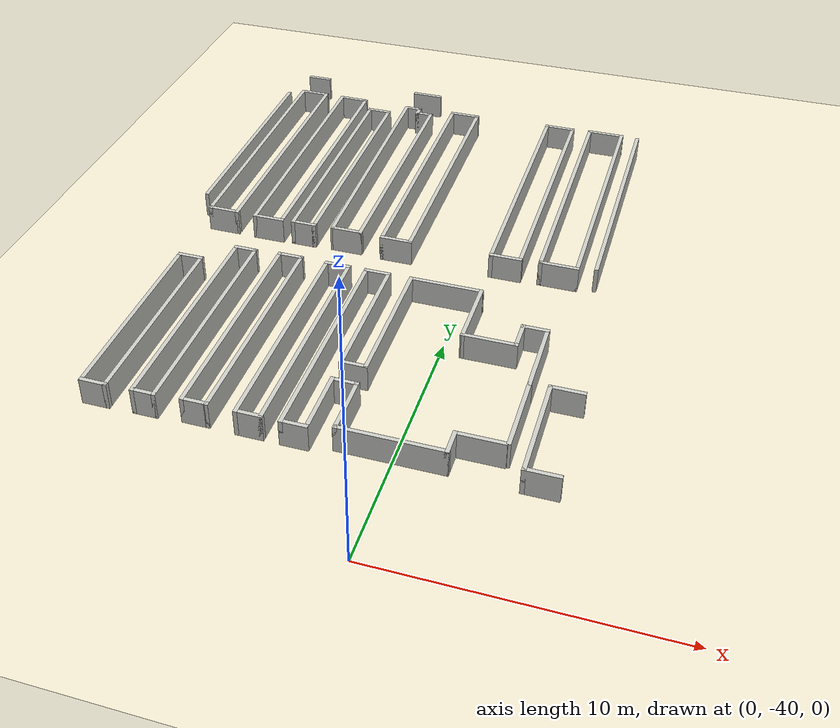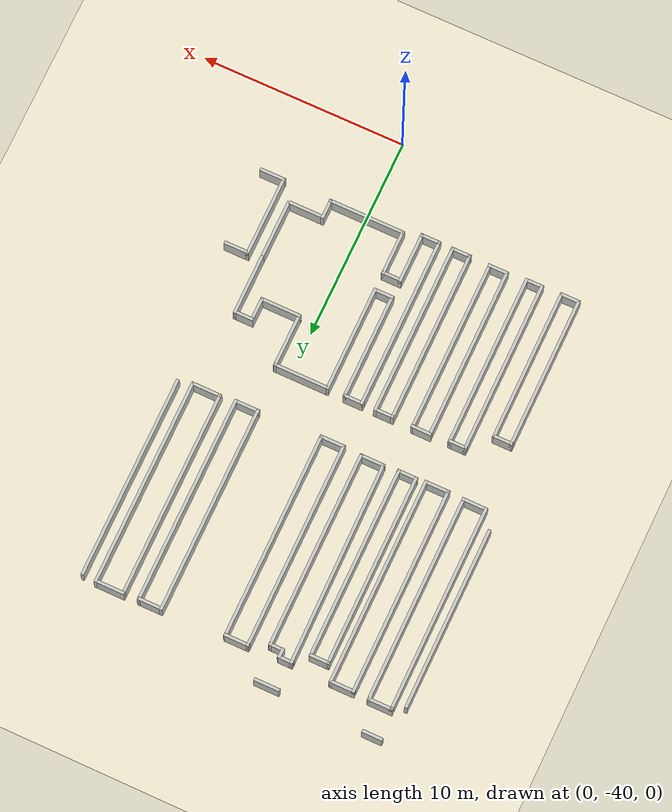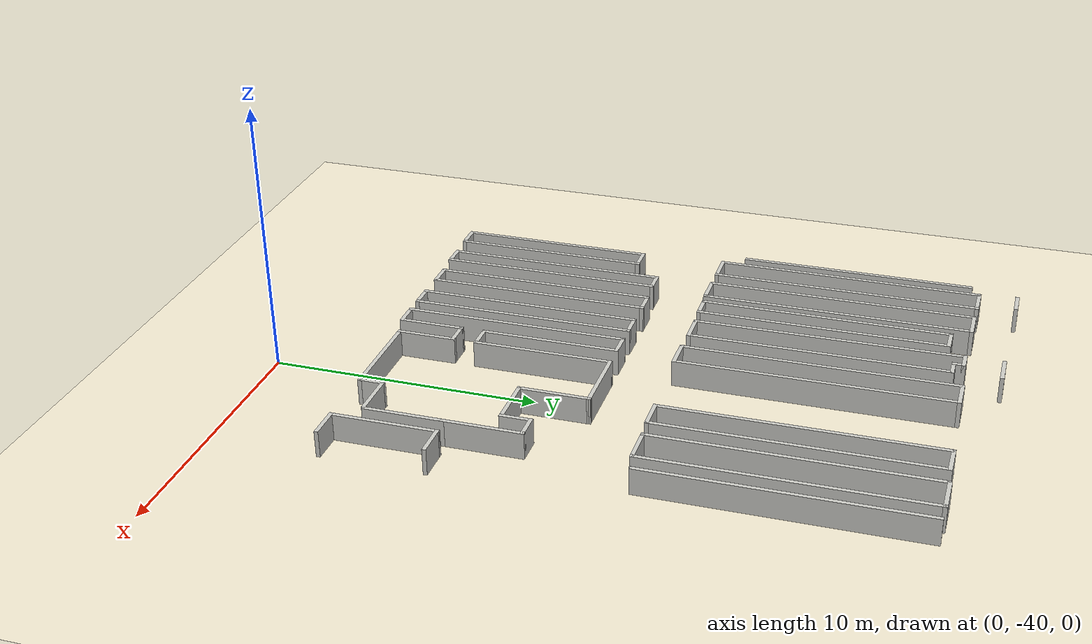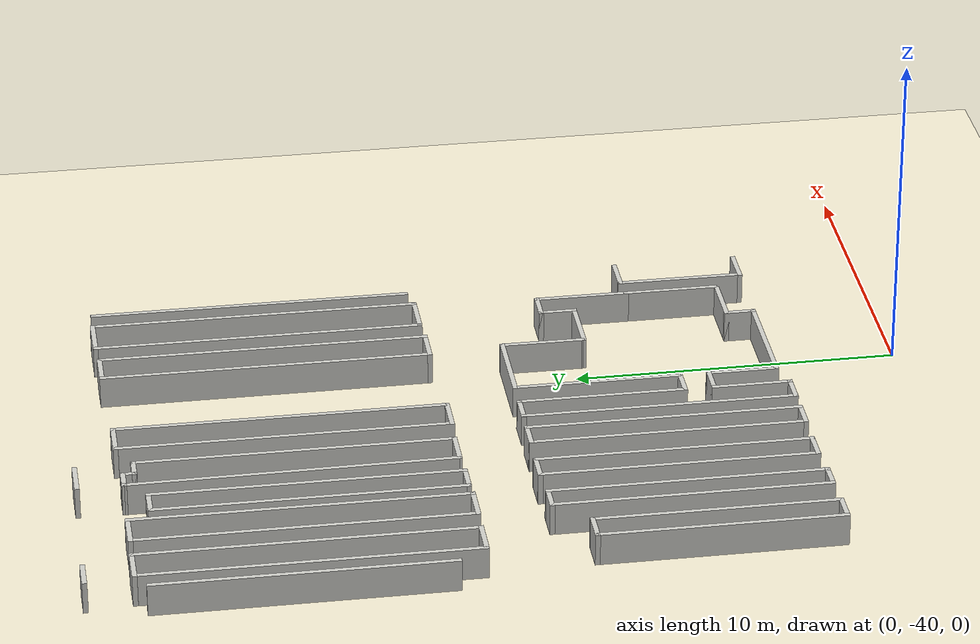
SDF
<sdf version="1.7">
 <world name="default">
  <model name="ground_plane">
   <static>1</static>
   <link name="link">
    <collision name="collision">
     <geometry><plane><normal>0 0 1</normal><size>100 100</size></plane></geometry>
     <surface><friction><ode><mu>100</mu><mu2>50</mu2></ode></friction></surface>
    </collision>
    <visual name="visual">
     <cast_shadows>0</cast_shadows>
     <geometry><plane><normal>0 0 1</normal><size>100 100</size></plane></geometry>
     <material>
      <ambient>0.85 0.82 0.72 1</ambient>
      <diffuse>0.95 0.92 0.82 1</diffuse>
      <specular>0.05 0.05 0.05 1</specular>
     </material>
    </visual>
   </link>
  </model>
  <model name="warehouse">
   <pose>0.004046 2.00696 0 0 -0 0</pose>
   <link name="Wall_357">
    <collision name="Wall_357_Collision">
     <geometry><box><size>7.5 0.15 1</size></box></geometry>
     <pose>0 0 0.5 0 -0 0</pose>
    </collision>
    <visual name="Wall_357_Visual">
     <pose>0 0 0.5 0 -0 0</pose>
     <geometry><box><size>7.5 0.15 1</size></box></geometry>
     <material>
      <script><uri>file://media/materials/scripts/gazebo.material</uri><name>Gazebo/CeilingTiled</name></script>
      <ambient>1 1 1 1</ambient>
     </material>
     <meta><layer>0</layer></meta>
    </visual>
    <pose>-10.458 -34.5645 0 0 -0 -1.5708</pose>
   </link>
   <link name="Wall_358">
    <collision name="Wall_358_Collision">
     <geometry><box><size>1 0.15 1</size></box></geometry>
     <pose>0 0 0.5 0 -0 0</pose>
    </collision>
    <visual name="Wall_358_Visual">
     <pose>0 0 0.5 0 -0 0</pose>
     <geometry><box><size>1 0.15 1</size></box></geometry>
     <material>
      <script><uri>file://media/materials/scripts/gazebo.material</uri><name>Gazebo/CeilingTiled</name></script>
      <ambient>1 1 1 1</ambient>
     </material>
     <meta><layer>0</layer></meta>
    </visual>
    <pose>-10.033 -38.2395 0 0 -0 0</pose>
   </link>
   <link name="Wall_359">
    <collision name="Wall_359_Collision">
     <geometry><box><size>7.5 0.15 1</size></box></geometry>
     <pose>0 0 0.5 0 -0 0</pose>
    </collision>
    <visual name="Wall_359_Visual">
     <pose>0 0 0.5 0 -0 0</pose>
     <geometry><box><size>7.5 0.15 1</size></box></geometry>
     <material>
      <script><uri>file://media/materials/scripts/gazebo.material</uri><name>Gazebo/CeilingTiled</name></script>
      <ambient>1 1 1 1</ambient>
     </material>
     <meta><layer>0</layer></meta>
    </visual>
    <pose>-9.60804 -34.5645 0 0 -0 1.5708</pose>
   </link>
   <link name="Wall_360">
    <collision name="Wall_360_Collision">
     <geometry><box><size>1 0.15 1</size></box></geometry>
     <pose>0 0 0.5 0 -0 0</pose>
    </collision>
    <visual name="Wall_360_Visual">
     <pose>0 0 0.5 0 -0 0</pose>
     <geometry><box><size>1 0.15 1</size></box></geometry>
     <material>
      <script><uri>file://media/materials/scripts/gazebo.material</uri><name>Gazebo/CeilingTiled</name></script>
      <ambient>1 1 1 1</ambient>
     </material>
     <meta><layer>0</layer></meta>
    </visual>
    <pose>-10.033 -30.8895 0 0 -0 3.14159</pose>
   </link>
   <link name="Wall_362">
    <collision name="Wall_362_Collision">
     <geometry><box><size>8.5 0.15 1</size></box></geometry>
     <pose>0 0 0.5 0 -0 0</pose>
    </collision>
    <visual name="Wall_362_Visual">
     <pose>0 0 0.5 0 -0 0</pose>
     <geometry><box><size>8.5 0.15 1</size></box></geometry>
     <material>
      <script><uri>file://media/materials/scripts/gazebo.material</uri><name>Gazebo/CeilingTiled</name></script>
      <ambient>1 1 1 1</ambient>
     </material>
     <meta><layer>0</layer></meta>
    </visual>
    <pose>-8.65804 -34.0245 0 0 -0 -1.5708</pose>
   </link>
   <link name="Wall_363">
    <collision name="Wall_363_Collision">
     <geometry><box><size>0.913 0.15 1</size></box></geometry>
     <pose>0 0 0.5 0 -0 0</pose>
    </collision>
    <visual name="Wall_363_Visual">
     <pose>0 0 0.5 0 -0 0</pose>
     <geometry><box><size>0.913 0.15 1</size></box></geometry>
     <material>
      <script><uri>file://media/materials/scripts/gazebo.material</uri><name>Gazebo/CeilingTiled</name></script>
      <ambient>1 1 1 1</ambient>
     </material>
     <meta><layer>0</layer></meta>
    </visual>
    <pose>-8.27654 -38.1995 0 0 -0 0</pose>
   </link>
   <link name="Wall_364">
    <collision name="Wall_364_Collision">
     <geometry><box><size>8.5 0.15 1</size></box></geometry>
     <pose>0 0 0.5 0 -0 0</pose>
    </collision>
    <visual name="Wall_364_Visual">
     <pose>0 0 0.5 0 -0 0</pose>
     <geometry><box><size>8.5 0.15 1</size></box></geometry>
     <material>
      <script><uri>file://media/materials/scripts/gazebo.material</uri><name>Gazebo/CeilingTiled</name></script>
      <ambient>1 1 1 1</ambient>
     </material>
     <meta><layer>0</layer></meta>
    </visual>
    <pose>-7.89504 -34.0245 0 0 -0 1.5708</pose>
   </link>
   <link name="Wall_365">
    <collision name="Wall_365_Collision">
     <geometry><box><size>0.913 0.15 1</size></box></geometry>
     <pose>0 0 0.5 0 -0 0</pose>
    </collision>
    <visual name="Wall_365_Visual">
     <pose>0 0 0.5 0 -0 0</pose>
     <geometry><box><size>0.913 0.15 1</size></box></geometry>
     <material>
      <script><uri>file://media/materials/scripts/gazebo.material</uri><name>Gazebo/CeilingTiled</name></script>
      <ambient>1 1 1 1</ambient>
     </material>
     <meta><layer>0</layer></meta>
    </visual>
    <pose>-8.27654 -29.8495 0 0 -0 3.14159</pose>
   </link>
   <link name="Wall_367">
    <collision name="Wall_367_Collision">
     <geometry><box><size>8.5 0.15 1</size></box></geometry>
     <pose>0 0 0.5 0 -0 0</pose>
    </collision>
    <visual name="Wall_367_Visual">
     <pose>0 0 0.5 0 -0 0</pose>
     <geometry><box><size>8.5 0.15 1</size></box></geometry>
     <material>
      <script><uri>file://media/materials/scripts/gazebo.material</uri><name>Gazebo/CeilingTiled</name></script>
      <ambient>1 1 1 1</ambient>
     </material>
     <meta><layer>0</layer></meta>
    </visual>
    <pose>-6.95104 -33.9425 0 0 -0 -1.5708</pose>
   </link>
   <link name="Wall_368">
    <collision name="Wall_368_Collision">
     <geometry><box><size>1 0.15 1</size></box></geometry>
     <pose>0 0 0.5 0 -0 0</pose>
    </collision>
    <visual name="Wall_368_Visual">
     <pose>0 0 0.5 0 -0 0</pose>
     <geometry><box><size>1 0.15 1</size></box></geometry>
     <material>
      <script><uri>file://media/materials/scripts/gazebo.material</uri><name>Gazebo/CeilingTiled</name></script>
      <ambient>1 1 1 1</ambient>
     </material>
     <meta><layer>0</layer></meta>
    </visual>
    <pose>-6.52604 -38.1175 0 0 -0 0</pose>
   </link>
   <link name="Wall_369">
    <collision name="Wall_369_Collision">
     <geometry><box><size>8.5 0.15 1</size></box></geometry>
     <pose>0 0 0.5 0 -0 0</pose>
    </collision>
    <visual name="Wall_369_Visual">
     <pose>0 0 0.5 0 -0 0</pose>
     <geometry><box><size>8.5 0.15 1</size></box></geometry>
     <material>
      <script><uri>file://media/materials/scripts/gazebo.material</uri><name>Gazebo/CeilingTiled</name></script>
      <ambient>1 1 1 1</ambient>
     </material>
     <meta><layer>0</layer></meta>
    </visual>
    <pose>-6.10104 -33.9425 0 0 -0 1.5708</pose>
   </link>
   <link name="Wall_370">
    <collision name="Wall_370_Collision">
     <geometry><box><size>1 0.15 1</size></box></geometry>
     <pose>0 0 0.5 0 -0 0</pose>
    </collision>
    <visual name="Wall_370_Visual">
     <pose>0 0 0.5 0 -0 0</pose>
     <geometry><box><size>1 0.15 1</size></box></geometry>
     <material>
      <script><uri>file://media/materials/scripts/gazebo.material</uri><name>Gazebo/CeilingTiled</name></script>
      <ambient>1 1 1 1</ambient>
     </material>
     <meta><layer>0</layer></meta>
    </visual>
    <pose>-6.52604 -29.7675 0 0 -0 3.14159</pose>
   </link>
   <link name="Wall_373">
    <collision name="Wall_373_Collision">
     <geometry><box><size>8.5 0.15 1</size></box></geometry>
     <pose>0 0 0.5 0 -0 0</pose>
    </collision>
    <visual name="Wall_373_Visual">
     <pose>0 0 0.5 0 -0 0</pose>
     <geometry><box><size>8.5 0.15 1</size></box></geometry>
     <material>
      <script><uri>file://media/materials/scripts/gazebo.material</uri><name>Gazebo/CeilingTiled</name></script>
      <ambient>1 1 1 1</ambient>
     </material>
     <meta><layer>0</layer></meta>
    </visual>
    <pose>-4.24804 -33.9665 0 0 -0 -1.5708</pose>
   </link>
   <link name="Wall_374">
    <collision name="Wall_374_Collision">
     <geometry><box><size>1 0.15 1</size></box></geometry>
     <pose>0 0 0.5 0 -0 0</pose>
    </collision>
    <visual name="Wall_374_Visual">
     <pose>0 0 0.5 0 -0 0</pose>
     <geometry><box><size>1 0.15 1</size></box></geometry>
     <material>
      <script><uri>file://media/materials/scripts/gazebo.material</uri><name>Gazebo/CeilingTiled</name></script>
      <ambient>1 1 1 1</ambient>
     </material>
     <meta><layer>0</layer></meta>
    </visual>
    <pose>-4.67304 -38.1415 0 0 -0 3.14159</pose>
   </link>
   <link name="Wall_375">
    <collision name="Wall_375_Collision">
     <geometry><box><size>8.5 0.15 1</size></box></geometry>
     <pose>0 0 0.5 0 -0 0</pose>
    </collision>
    <visual name="Wall_375_Visual">
     <pose>0 0 0.5 0 -0 0</pose>
     <geometry><box><size>8.5 0.15 1</size></box></geometry>
     <material>
      <script><uri>file://media/materials/scripts/gazebo.material</uri><name>Gazebo/CeilingTiled</name></script>
      <ambient>1 1 1 1</ambient>
     </material>
     <meta><layer>0</layer></meta>
    </visual>
    <pose>-5.09804 -33.9665 0 0 -0 1.5708</pose>
   </link>
   <link name="Wall_377">
    <collision name="Wall_377_Collision">
     <geometry><box><size>1 0.15 1</size></box></geometry>
     <pose>0 0 0.5 0 -0 0</pose>
    </collision>
    <visual name="Wall_377_Visual">
     <pose>0 0 0.5 0 -0 0</pose>
     <geometry><box><size>1 0.15 1</size></box></geometry>
     <material>
      <script><uri>file://media/materials/scripts/gazebo.material</uri><name>Gazebo/CeilingTiled</name></script>
      <ambient>1 1 1 1</ambient>
     </material>
     <meta><layer>0</layer></meta>
    </visual>
    <pose>-4.67304 -29.7915 0 0 -0 0</pose>
   </link>
   <link name="Wall_379">
    <collision name="Wall_379_Collision">
     <geometry><box><size>1 0.15 1</size></box></geometry>
     <pose>0 0 0.5 0 -0 0</pose>
    </collision>
    <visual name="Wall_379_Visual">
     <pose>0 0 0.5 0 -0 0</pose>
     <geometry><box><size>1 0.15 1</size></box></geometry>
     <material>
      <script><uri>file://media/materials/scripts/gazebo.material</uri><name>Gazebo/CeilingTiled</name></script>
      <ambient>1 1 1 1</ambient>
     </material>
     <meta><layer>0</layer></meta>
    </visual>
    <pose>-3.14704 -29.7955 0 0 -0 0</pose>
   </link>
   <link name="Wall_380">
    <collision name="Wall_380_Collision">
     <geometry><box><size>5.25 0.15 1</size></box></geometry>
     <pose>0 0 0.5 0 -0 0</pose>
    </collision>
    <visual name="Wall_380_Visual">
     <pose>0 0 0.5 0 -0 0</pose>
     <geometry><box><size>5.25 0.15 1</size></box></geometry>
     <material>
      <script><uri>file://media/materials/scripts/gazebo.material</uri><name>Gazebo/CeilingTiled</name></script>
      <ambient>1 1 1 1</ambient>
     </material>
     <meta><layer>0</layer></meta>
    </visual>
    <pose>-2.72204 -32.3455 0 0 -0 -1.5708</pose>
   </link>
   <link name="Wall_382">
    <collision name="Wall_382_Collision">
     <geometry><box><size>5.25 0.15 1</size></box></geometry>
     <pose>0 0 0.5 0 -0 0</pose>
    </collision>
    <visual name="Wall_382_Visual">
     <pose>0 0 0.5 0 -0 0</pose>
     <geometry><box><size>5.25 0.15 1</size></box></geometry>
     <material>
      <script><uri>file://media/materials/scripts/gazebo.material</uri><name>Gazebo/CeilingTiled</name></script>
      <ambient>1 1 1 1</ambient>
     </material>
     <meta><layer>0</layer></meta>
    </visual>
    <pose>-1.87204 -32.3455 0 0 -0 1.5708</pose>
   </link>
   <link name="Wall_383">
    <collision name="Wall_383_Collision">
     <geometry><box><size>2.75 0.15 1</size></box></geometry>
     <pose>0 0 0.5 0 -0 0</pose>
    </collision>
    <visual name="Wall_383_Visual">
     <pose>0 0 0.5 0 -0 0</pose>
     <geometry><box><size>2.75 0.15 1</size></box></geometry>
     <material>
      <script><uri>file://media/materials/scripts/gazebo.material</uri><name>Gazebo/CeilingTiled</name></script>
      <ambient>1 1 1 1</ambient>
     </material>
     <meta><layer>0</layer></meta>
    </visual>
    <pose>-0.572038 -29.7955 0 0 -0 0</pose>
   </link>
   <link name="Wall_384">
    <collision name="Wall_384_Collision">
     <geometry><box><size>2.69925 0.15 1</size></box></geometry>
     <pose>0 0 0.5 0 -0 0</pose>
    </collision>
    <visual name="Wall_384_Visual">
     <pose>0 0 0.5 0 -0 0</pose>
     <geometry><box><size>2.69925 0.15 1</size></box></geometry>
     <material>
      <script><uri>file://media/materials/scripts/gazebo.material</uri><name>Gazebo/CeilingTiled</name></script>
      <ambient>1 1 1 1</ambient>
     </material>
     <meta><layer>0</layer></meta>
    </visual>
    <pose>0.723462 -31.07 0 0 -0 -1.57433</pose>
   </link>
   <link name="Wall_385">
    <collision name="Wall_385_Collision">
     <geometry><box><size>2.00879 0.15 1</size></box></geometry>
     <pose>0 0 0.5 0 -0 0</pose>
    </collision>
    <visual name="Wall_385_Visual">
     <pose>0 0 0.5 0 -0 0</pose>
     <geometry><box><size>2.00879 0.15 1</size></box></geometry>
     <material>
      <script><uri>file://media/materials/scripts/gazebo.material</uri><name>Gazebo/CeilingTiled</name></script>
      <ambient>1 1 1 1</ambient>
     </material>
     <meta><layer>0</layer></meta>
    </visual>
    <pose>1.64846 -32.3445 0 0 -0 0</pose>
   </link>
   <link name="Wall_386">
    <collision name="Wall_386_Collision">
     <geometry><box><size>1.19887 0.15 1</size></box></geometry>
     <pose>0 0 0.5 0 -0 0</pose>
    </collision>
    <visual name="Wall_386_Visual">
     <pose>0 0 0.5 0 -0 0</pose>
     <geometry><box><size>1.19887 0.15 1</size></box></geometry>
     <material>
      <script><uri>file://media/materials/scripts/gazebo.material</uri><name>Gazebo/CeilingTiled</name></script>
      <ambient>1 1 1 1</ambient>
     </material>
     <meta><layer>0</layer></meta>
    </visual>
    <pose>2.57796 -31.82 0 0 -0 1.5708</pose>
   </link>
   <link name="Wall_387">
    <collision name="Wall_387_Collision">
     <geometry><box><size>1 0.15 1</size></box></geometry>
     <pose>0 0 0.5 0 -0 0</pose>
    </collision>
    <visual name="Wall_387_Visual">
     <pose>0 0 0.5 0 -0 0</pose>
     <geometry><box><size>1 0.15 1</size></box></geometry>
     <material>
      <script><uri>file://media/materials/scripts/gazebo.material</uri><name>Gazebo/CeilingTiled</name></script>
      <ambient>1 1 1 1</ambient>
     </material>
     <meta><layer>0</layer></meta>
    </visual>
    <pose>3.00296 -31.2955 0 0 -0 0</pose>
   </link>
   <link name="Wall_388">
    <collision name="Wall_388_Collision">
     <geometry><box><size>3 0.15 1</size></box></geometry>
     <pose>0 0 0.5 0 -0 0</pose>
    </collision>
    <visual name="Wall_388_Visual">
     <pose>0 0 0.5 0 -0 0</pose>
     <geometry><box><size>3 0.15 1</size></box></geometry>
     <material>
      <script><uri>file://media/materials/scripts/gazebo.material</uri><name>Gazebo/CeilingTiled</name></script>
      <ambient>1 1 1 1</ambient>
     </material>
     <meta><layer>0</layer></meta>
    </visual>
    <pose>3.42796 -32.7205 0 0 -0 -1.5708</pose>
   </link>
   <link name="Wall_389">
    <collision name="Wall_389_Collision">
     <geometry><box><size>3 0.15 1</size></box></geometry>
     <pose>0 0 0.5 0 -0 0</pose>
    </collision>
    <visual name="Wall_389_Visual">
     <pose>0 0 0.5 0 -0 0</pose>
     <geometry><box><size>3 0.15 1</size></box></geometry>
     <material>
      <script><uri>file://media/materials/scripts/gazebo.material</uri><name>Gazebo/CeilingTiled</name></script>
      <ambient>1 1 1 1</ambient>
     </material>
     <meta><layer>0</layer></meta>
    </visual>
    <pose>3.42796 -35.5705 0 0 -0 -1.5708</pose>
   </link>
   <link name="Wall_396">
    <collision name="Wall_396_Collision">
     <geometry><box><size>8.5 0.15 1</size></box></geometry>
     <pose>0 0 0.5 0 -0 0</pose>
    </collision>
    <visual name="Wall_396_Visual">
     <pose>0 0 0.5 0 -0 0</pose>
     <geometry><box><size>8.5 0.15 1</size></box></geometry>
     <material>
      <script><uri>file://media/materials/scripts/gazebo.material</uri><name>Gazebo/CeilingTiled</name></script>
      <ambient>1 1 1 1</ambient>
     </material>
     <meta><layer>0</layer></meta>
    </visual>
    <pose>-3.57204 -33.9705 0 0 -0 -1.5708</pose>
   </link>
   <link name="Wall_397">
    <collision name="Wall_397_Collision">
     <geometry><box><size>1 0.15 1</size></box></geometry>
     <pose>0 0 0.5 0 -0 0</pose>
    </collision>
    <visual name="Wall_397_Visual">
     <pose>0 0 0.5 0 -0 0</pose>
     <geometry><box><size>1 0.15 1</size></box></geometry>
     <material>
      <script><uri>file://media/materials/scripts/gazebo.material</uri><name>Gazebo/CeilingTiled</name></script>
      <ambient>1 1 1 1</ambient>
     </material>
     <meta><layer>0</layer></meta>
    </visual>
    <pose>-3.14704 -38.1455 0 0 -0 0</pose>
   </link>
   <link name="Wall_398">
    <collision name="Wall_398_Collision">
     <geometry><box><size>2.5 0.15 1</size></box></geometry>
     <pose>0 0 0.5 0 -0 0</pose>
    </collision>
    <visual name="Wall_398_Visual">
     <pose>0 0 0.5 0 -0 0</pose>
     <geometry><box><size>2.5 0.15 1</size></box></geometry>
     <material>
      <script><uri>file://media/materials/scripts/gazebo.material</uri><name>Gazebo/CeilingTiled</name></script>
      <ambient>1 1 1 1</ambient>
     </material>
     <meta><layer>0</layer></meta>
    </visual>
    <pose>-2.72204 -36.9705 0 0 -0 1.5708</pose>
   </link>
   <link name="Wall_399">
    <collision name="Wall_399_Collision">
     <geometry><box><size>1 0.15 1</size></box></geometry>
     <pose>0 0 0.5 0 -0 0</pose>
    </collision>
    <visual name="Wall_399_Visual">
     <pose>0 0 0.5 0 -0 0</pose>
     <geometry><box><size>1 0.15 1</size></box></geometry>
     <material>
      <script><uri>file://media/materials/scripts/gazebo.material</uri><name>Gazebo/CeilingTiled</name></script>
      <ambient>1 1 1 1</ambient>
     </material>
     <meta><layer>0</layer></meta>
    </visual>
    <pose>-2.29704 -35.7955 0 0 -0 0</pose>
   </link>
   <link name="Wall_459">
    <collision name="Wall_459_Collision">
     <geometry><box><size>1.25 0.15 1</size></box></geometry>
     <pose>0 0 0.5 0 -0 0</pose>
    </collision>
    <visual name="Wall_459_Visual">
     <pose>0 0 0.5 0 -0 0</pose>
     <geometry><box><size>1.25 0.15 1</size></box></geometry>
     <material>
      <script><uri>file://media/materials/scripts/gazebo.material</uri><name>Gazebo/CeilingTiled</name></script>
      <ambient>1 1 1 1</ambient>
     </material>
     <meta><layer>0</layer></meta>
    </visual>
    <pose>4.64796 -34.0805 0 0 -0 0</pose>
   </link>
   <link name="Wall_461">
    <collision name="Wall_461_Collision">
     <geometry><box><size>1.25 0.15 1</size></box></geometry>
     <pose>0 0 0.5 0 -0 0</pose>
    </collision>
    <visual name="Wall_461_Visual">
     <pose>0 0 0.5 0 -0 0</pose>
     <geometry><box><size>1.25 0.15 1</size></box></geometry>
     <material>
      <script><uri>file://media/materials/scripts/gazebo.material</uri><name>Gazebo/CeilingTiled</name></script>
      <ambient>1 1 1 1</ambient>
     </material>
     <meta><layer>0</layer></meta>
    </visual>
    <pose>4.64796 -37.9305 0 0 -0 3.14159</pose>
   </link>
   <link name="Wall_462">
    <collision name="Wall_462_Collision">
     <geometry><box><size>4 0.15 1</size></box></geometry>
     <pose>0 0 0.5 0 -0 0</pose>
    </collision>
    <visual name="Wall_462_Visual">
     <pose>0 0 0.5 0 -0 0</pose>
     <geometry><box><size>4 0.15 1</size></box></geometry>
     <material>
      <script><uri>file://media/materials/scripts/gazebo.material</uri><name>Gazebo/CeilingTiled</name></script>
      <ambient>1 1 1 1</ambient>
     </material>
     <meta><layer>0</layer></meta>
    </visual>
    <pose>4.09796 -36.0055 0 0 -0 1.5708</pose>
   </link>
   <link name="Wall_604">
    <collision name="Wall_604_Collision">
     <geometry><box><size>9 0.15 1</size></box></geometry>
     <pose>0 0 0.5 0 -0 0</pose>
    </collision>
    <visual name="Wall_604_Visual">
     <pose>0 0 0.5 0 -0 0</pose>
     <geometry><box><size>9 0.15 1</size></box></geometry>
     <material>
      <script><uri>file://media/materials/scripts/gazebo.material</uri><name>Gazebo/CeilingTiled</name></script>
      <ambient>1 1 1 1</ambient>
     </material>
     <meta><layer>0</layer></meta>
    </visual>
    <pose>-11.224 -22.3355 0 0 -0 -1.5708</pose>
   </link>
   <link name="Wall_610">
    <collision name="Wall_610_Collision">
     <geometry><box><size>10.25 0.15 1</size></box></geometry>
     <pose>0 0 0.5 0 -0 0</pose>
    </collision>
    <visual name="Wall_610_Visual">
     <pose>0 0 0.5 0 -0 0</pose>
     <geometry><box><size>10.25 0.15 1</size></box></geometry>
     <material>
      <script><uri>file://media/materials/scripts/gazebo.material</uri><name>Gazebo/CeilingTiled</name></script>
      <ambient>1 1 1 1</ambient>
     </material>
     <meta><layer>0</layer></meta>
    </visual>
    <pose>-10.674 -22.5825 0 0 -0 -1.5708</pose>
   </link>
   <link name="Wall_611">
    <collision name="Wall_611_Collision">
     <geometry><box><size>1.25 0.15 1</size></box></geometry>
     <pose>0 0 0.5 0 -0 0</pose>
    </collision>
    <visual name="Wall_611_Visual">
     <pose>0 0 0.5 0 -0 0</pose>
     <geometry><box><size>1.25 0.15 1</size></box></geometry>
     <material>
      <script><uri>file://media/materials/scripts/gazebo.material</uri><name>Gazebo/CeilingTiled</name></script>
      <ambient>1 1 1 1</ambient>
     </material>
     <meta><layer>0</layer></meta>
    </visual>
    <pose>-10.124 -27.6325 0 0 -0 0</pose>
   </link>
   <link name="Wall_612">
    <collision name="Wall_612_Collision">
     <geometry><box><size>10.25 0.15 1</size></box></geometry>
     <pose>0 0 0.5 0 -0 0</pose>
    </collision>
    <visual name="Wall_612_Visual">
     <pose>0 0 0.5 0 -0 0</pose>
     <geometry><box><size>10.25 0.15 1</size></box></geometry>
     <material>
      <script><uri>file://media/materials/scripts/gazebo.material</uri><name>Gazebo/CeilingTiled</name></script>
      <ambient>1 1 1 1</ambient>
     </material>
     <meta><layer>0</layer></meta>
    </visual>
    <pose>-9.57404 -22.5825 0 0 -0 1.5708</pose>
   </link>
   <link name="Wall_613">
    <collision name="Wall_613_Collision">
     <geometry><box><size>1.25 0.15 1</size></box></geometry>
     <pose>0 0 0.5 0 -0 0</pose>
    </collision>
    <visual name="Wall_613_Visual">
     <pose>0 0 0.5 0 -0 0</pose>
     <geometry><box><size>1.25 0.15 1</size></box></geometry>
     <material>
      <script><uri>file://media/materials/scripts/gazebo.material</uri><name>Gazebo/CeilingTiled</name></script>
      <ambient>1 1 1 1</ambient>
     </material>
     <meta><layer>0</layer></meta>
    </visual>
    <pose>-10.124 -17.5325 0 0 -0 3.14159</pose>
   </link>
   <link name="Wall_615">
    <collision name="Wall_615_Collision">
     <geometry><box><size>10.25 0.15 1</size></box></geometry>
     <pose>0 0 0.5 0 -0 0</pose>
    </collision>
    <visual name="Wall_615_Visual">
     <pose>0 0 0.5 0 -0 0</pose>
     <geometry><box><size>10.25 0.15 1</size></box></geometry>
     <material>
      <script><uri>file://media/materials/scripts/gazebo.material</uri><name>Gazebo/CeilingTiled</name></script>
      <ambient>1 1 1 1</ambient>
     </material>
     <meta><layer>0</layer></meta>
    </visual>
    <pose>-8.80704 -22.6085 0 0 -0 -1.5708</pose>
   </link>
   <link name="Wall_616">
    <collision name="Wall_616_Collision">
     <geometry><box><size>1.25 0.15 1</size></box></geometry>
     <pose>0 0 0.5 0 -0 0</pose>
    </collision>
    <visual name="Wall_616_Visual">
     <pose>0 0 0.5 0 -0 0</pose>
     <geometry><box><size>1.25 0.15 1</size></box></geometry>
     <material>
      <script><uri>file://media/materials/scripts/gazebo.material</uri><name>Gazebo/CeilingTiled</name></script>
      <ambient>1 1 1 1</ambient>
     </material>
     <meta><layer>0</layer></meta>
    </visual>
    <pose>-8.25704 -27.6585 0 0 -0 0</pose>
   </link>
   <link name="Wall_617">
    <collision name="Wall_617_Collision">
     <geometry><box><size>10.25 0.15 1</size></box></geometry>
     <pose>0 0 0.5 0 -0 0</pose>
    </collision>
    <visual name="Wall_617_Visual">
     <pose>0 0 0.5 0 -0 0</pose>
     <geometry><box><size>10.25 0.15 1</size></box></geometry>
     <material>
      <script><uri>file://media/materials/scripts/gazebo.material</uri><name>Gazebo/CeilingTiled</name></script>
      <ambient>1 1 1 1</ambient>
     </material>
     <meta><layer>0</layer></meta>
    </visual>
    <pose>-7.70704 -22.6085 0 0 -0 1.5708</pose>
   </link>
   <link name="Wall_618">
    <collision name="Wall_618_Collision">
     <geometry><box><size>1.25 0.15 1</size></box></geometry>
     <pose>0 0 0.5 0 -0 0</pose>
    </collision>
    <visual name="Wall_618_Visual">
     <pose>0 0 0.5 0 -0 0</pose>
     <geometry><box><size>1.25 0.15 1</size></box></geometry>
     <material>
      <script><uri>file://media/materials/scripts/gazebo.material</uri><name>Gazebo/CeilingTiled</name></script>
      <ambient>1 1 1 1</ambient>
     </material>
     <meta><layer>0</layer></meta>
    </visual>
    <pose>-8.25704 -17.5585 0 0 -0 3.14159</pose>
   </link>
   <link name="Wall_620">
    <collision name="Wall_620_Collision">
     <geometry><box><size>10.25 0.15 1</size></box></geometry>
     <pose>0 0 0.5 0 -0 0</pose>
    </collision>
    <visual name="Wall_620_Visual">
     <pose>0 0 0.5 0 -0 0</pose>
     <geometry><box><size>10.25 0.15 1</size></box></geometry>
     <material>
      <script><uri>file://media/materials/scripts/gazebo.material</uri><name>Gazebo/CeilingTiled</name></script>
      <ambient>1 1 1 1</ambient>
     </material>
     <meta><layer>0</layer></meta>
    </visual>
    <pose>-3.67504 -22.5565 0 0 -0 -1.5708</pose>
   </link>
   <link name="Wall_621">
    <collision name="Wall_621_Collision">
     <geometry><box><size>1.25 0.15 1</size></box></geometry>
     <pose>0 0 0.5 0 -0 0</pose>
    </collision>
    <visual name="Wall_621_Visual">
     <pose>0 0 0.5 0 -0 0</pose>
     <geometry><box><size>1.25 0.15 1</size></box></geometry>
     <material>
      <script><uri>file://media/materials/scripts/gazebo.material</uri><name>Gazebo/CeilingTiled</name></script>
      <ambient>1 1 1 1</ambient>
     </material>
     <meta><layer>0</layer></meta>
    </visual>
    <pose>-3.12504 -27.6065 0 0 -0 0</pose>
   </link>
   <link name="Wall_622">
    <collision name="Wall_622_Collision">
     <geometry><box><size>10.25 0.15 1</size></box></geometry>
     <pose>0 0 0.5 0 -0 0</pose>
    </collision>
    <visual name="Wall_622_Visual">
     <pose>0 0 0.5 0 -0 0</pose>
     <geometry><box><size>10.25 0.15 1</size></box></geometry>
     <material>
      <script><uri>file://media/materials/scripts/gazebo.material</uri><name>Gazebo/CeilingTiled</name></script>
      <ambient>1 1 1 1</ambient>
     </material>
     <meta><layer>0</layer></meta>
    </visual>
    <pose>-2.57504 -22.5565 0 0 -0 1.5708</pose>
   </link>
   <link name="Wall_623">
    <collision name="Wall_623_Collision">
     <geometry><box><size>1.25 0.15 1</size></box></geometry>
     <pose>0 0 0.5 0 -0 0</pose>
    </collision>
    <visual name="Wall_623_Visual">
     <pose>0 0 0.5 0 -0 0</pose>
     <geometry><box><size>1.25 0.15 1</size></box></geometry>
     <material>
      <script><uri>file://media/materials/scripts/gazebo.material</uri><name>Gazebo/CeilingTiled</name></script>
      <ambient>1 1 1 1</ambient>
     </material>
     <meta><layer>0</layer></meta>
    </visual>
    <pose>-3.12504 -17.5065 0 0 -0 3.14159</pose>
   </link>
   <link name="Wall_625">
    <collision name="Wall_625_Collision">
     <geometry><box><size>1 0.15 1</size></box></geometry>
     <pose>0 0 0.5 0 -0 0</pose>
    </collision>
    <visual name="Wall_625_Visual">
     <pose>0 0 0.5 0 -0 0</pose>
     <geometry><box><size>1 0.15 1</size></box></geometry>
     <material>
      <script><uri>file://media/materials/scripts/gazebo.material</uri><name>Gazebo/CeilingTiled</name></script>
      <ambient>1 1 1 1</ambient>
     </material>
     <meta><layer>0</layer></meta>
    </visual>
    <pose>-6.82404 -18.2615 0 0 -0 0</pose>
   </link>
   <link name="Wall_626">
    <collision name="Wall_626_Collision">
     <geometry><box><size>9.5 0.15 1</size></box></geometry>
     <pose>0 0 0.5 0 -0 0</pose>
    </collision>
    <visual name="Wall_626_Visual">
     <pose>0 0 0.5 0 -0 0</pose>
     <geometry><box><size>9.5 0.15 1</size></box></geometry>
     <material>
      <script><uri>file://media/materials/scripts/gazebo.material</uri><name>Gazebo/CeilingTiled</name></script>
      <ambient>1 1 1 1</ambient>
     </material>
     <meta><layer>0</layer></meta>
    </visual>
    <pose>-6.39904 -22.9365 0 0 -0 -1.5708</pose>
   </link>
   <link name="Wall_627">
    <collision name="Wall_627_Collision">
     <geometry><box><size>1 0.15 1</size></box></geometry>
     <pose>0 0 0.5 0 -0 0</pose>
    </collision>
    <visual name="Wall_627_Visual">
     <pose>0 0 0.5 0 -0 0</pose>
     <geometry><box><size>1 0.15 1</size></box></geometry>
     <material>
      <script><uri>file://media/materials/scripts/gazebo.material</uri><name>Gazebo/CeilingTiled</name></script>
      <ambient>1 1 1 1</ambient>
     </material>
     <meta><layer>0</layer></meta>
    </visual>
    <pose>-6.82404 -27.6115 0 0 -0 3.14159</pose>
   </link>
   <link name="Wall_628">
    <collision name="Wall_628_Collision">
     <geometry><box><size>9.5 0.15 1</size></box></geometry>
     <pose>0 0 0.5 0 -0 0</pose>
    </collision>
    <visual name="Wall_628_Visual">
     <pose>0 0 0.5 0 -0 0</pose>
     <geometry><box><size>9.5 0.15 1</size></box></geometry>
     <material>
      <script><uri>file://media/materials/scripts/gazebo.material</uri><name>Gazebo/CeilingTiled</name></script>
      <ambient>1 1 1 1</ambient>
     </material>
     <meta><layer>0</layer></meta>
    </visual>
    <pose>-7.24904 -22.9365 0 0 -0 1.5708</pose>
   </link>
   <link name="Wall_630">
    <collision name="Wall_630_Collision">
     <geometry><box><size>0.75 0.15 1</size></box></geometry>
     <pose>0 0 0.5 0 -0 0</pose>
    </collision>
    <visual name="Wall_630_Visual">
     <pose>0 0 0.5 0 -0 0</pose>
     <geometry><box><size>0.75 0.15 1</size></box></geometry>
     <material>
      <script><uri>file://media/materials/scripts/gazebo.material</uri><name>Gazebo/CeilingTiled</name></script>
      <ambient>1 1 1 1</ambient>
     </material>
     <meta><layer>0</layer></meta>
    </visual>
    <pose>-5.46204 -17.6085 0 0 -0 0</pose>
   </link>
   <link name="Wall_631">
    <collision name="Wall_631_Collision">
     <geometry><box><size>0.5 0.15 1</size></box></geometry>
     <pose>0 0 0.5 0 -0 0</pose>
    </collision>
    <visual name="Wall_631_Visual">
     <pose>0 0 0.5 0 -0 0</pose>
     <geometry><box><size>0.5 0.15 1</size></box></geometry>
     <material>
      <script><uri>file://media/materials/scripts/gazebo.material</uri><name>Gazebo/CeilingTiled</name></script>
      <ambient>1 1 1 1</ambient>
     </material>
     <meta><layer>0</layer></meta>
    </visual>
    <pose>-5.16204 -17.7835 0 0 -0 -1.5708</pose>
   </link>
   <link name="Wall_632">
    <collision name="Wall_632_Collision">
     <geometry><box><size>0.75 0.15 1</size></box></geometry>
     <pose>0 0 0.5 0 -0 0</pose>
    </collision>
    <visual name="Wall_632_Visual">
     <pose>0 0 0.5 0 -0 0</pose>
     <geometry><box><size>0.75 0.15 1</size></box></geometry>
     <material>
      <script><uri>file://media/materials/scripts/gazebo.material</uri><name>Gazebo/CeilingTiled</name></script>
      <ambient>1 1 1 1</ambient>
     </material>
     <meta><layer>0</layer></meta>
    </visual>
    <pose>-4.86204 -17.9585 0 0 -0 0</pose>
   </link>
   <link name="Wall_633">
    <collision name="Wall_633_Collision">
     <geometry><box><size>9.75 0.15 1</size></box></geometry>
     <pose>0 0 0.5 0 -0 0</pose>
    </collision>
    <visual name="Wall_633_Visual">
     <pose>0 0 0.5 0 -0 0</pose>
     <geometry><box><size>9.75 0.15 1</size></box></geometry>
     <material>
      <script><uri>file://media/materials/scripts/gazebo.material</uri><name>Gazebo/CeilingTiled</name></script>
      <ambient>1 1 1 1</ambient>
     </material>
     <meta><layer>0</layer></meta>
    </visual>
    <pose>-4.56204 -22.7585 0 0 -0 -1.5708</pose>
   </link>
   <link name="Wall_634">
    <collision name="Wall_634_Collision">
     <geometry><box><size>1.25 0.15 1</size></box></geometry>
     <pose>0 0 0.5 0 -0 0</pose>
    </collision>
    <visual name="Wall_634_Visual">
     <pose>0 0 0.5 0 -0 0</pose>
     <geometry><box><size>1.25 0.15 1</size></box></geometry>
     <material>
      <script><uri>file://media/materials/scripts/gazebo.material</uri><name>Gazebo/CeilingTiled</name></script>
      <ambient>1 1 1 1</ambient>
     </material>
     <meta><layer>0</layer></meta>
    </visual>
    <pose>-5.11204 -27.5585 0 0 -0 3.14159</pose>
   </link>
   <link name="Wall_635">
    <collision name="Wall_635_Collision">
     <geometry><box><size>10.1005 0.15 1</size></box></geometry>
     <pose>0 0 0.5 0 -0 0</pose>
    </collision>
    <visual name="Wall_635_Visual">
     <pose>0 0 0.5 0 -0 0</pose>
     <geometry><box><size>10.1005 0.15 1</size></box></geometry>
     <material>
      <script><uri>file://media/materials/scripts/gazebo.material</uri><name>Gazebo/CeilingTiled</name></script>
      <ambient>1 1 1 1</ambient>
     </material>
     <meta><layer>0</layer></meta>
    </visual>
    <pose>-5.71204 -22.5835 0 0 -0 1.58085</pose>
   </link>
   <link name="Wall_657">
    <collision name="Wall_657_Collision">
     <geometry><box><size>10 0.15 1</size></box></geometry>
     <pose>0 0 0.5 0 -0 0</pose>
    </collision>
    <visual name="Wall_657_Visual">
     <pose>0 0 0.5 0 -0 0</pose>
     <geometry><box><size>10 0.15 1</size></box></geometry>
     <material>
      <script><uri>file://media/materials/scripts/gazebo.material</uri><name>Gazebo/CeilingTiled</name></script>
      <ambient>1 1 1 1</ambient>
     </material>
     <meta><layer>0</layer></meta>
    </visual>
    <pose>4.39396 -22.3205 0 0 -0 1.5708</pose>
   </link>
   <link name="Wall_706">
    <collision name="Wall_706_Collision">
     <geometry><box><size>1 0.15 1</size></box></geometry>
     <pose>0 0 0.5 0 -0 0</pose>
    </collision>
    <visual name="Wall_706_Visual">
     <pose>0 0 0.5 0 -0 0</pose>
     <geometry><box><size>1 0.15 1</size></box></geometry>
     <material>
      <script><uri>file://media/materials/scripts/gazebo.material</uri><name>Gazebo/CeilingTiled</name></script>
      <ambient>1 1 1 1</ambient>
     </material>
     <meta><layer>0</layer></meta>
    </visual>
    <pose>-10.4 -16.1025 0 0 -0 3.14159</pose>
   </link>
   <link name="Wall_721">
    <collision name="Wall_721_Collision">
     <geometry><box><size>1.25 0.15 1</size></box></geometry>
     <pose>0 0 0.5 0 -0 0</pose>
    </collision>
    <visual name="Wall_721_Visual">
     <pose>0 0 0.5 0 -0 0</pose>
     <geometry><box><size>1.25 0.15 1</size></box></geometry>
     <material>
      <script><uri>file://media/materials/scripts/gazebo.material</uri><name>Gazebo/CeilingTiled</name></script>
      <ambient>1 1 1 1</ambient>
     </material>
     <meta><layer>0</layer></meta>
    </visual>
    <pose>-5.19704 -16.2215 0 0 -0 3.14159</pose>
   </link>
   <link name="Wall_859">
    <collision name="Wall_859_Collision">
     <geometry><box><size>10.25 0.15 1</size></box></geometry>
     <pose>0 0 0.5 0 -0 0</pose>
    </collision>
    <visual name="Wall_859_Visual">
     <pose>0 0 0.5 0 -0 0</pose>
     <geometry><box><size>10.25 0.15 1</size></box></geometry>
     <material>
      <script><uri>file://media/materials/scripts/gazebo.material</uri><name>Gazebo/CeilingTiled</name></script>
      <ambient>1 1 1 1</ambient>
     </material>
     <meta><layer>0</layer></meta>
    </visual>
    <pose>2.36696 -22.3825 0 0 -0 -1.5708</pose>
   </link>
   <link name="Wall_860">
    <collision name="Wall_860_Collision">
     <geometry><box><size>1.5 0.15 1</size></box></geometry>
     <pose>0 0 0.5 0 -0 0</pose>
    </collision>
    <visual name="Wall_860_Visual">
     <pose>0 0 0.5 0 -0 0</pose>
     <geometry><box><size>1.5 0.15 1</size></box></geometry>
     <material>
      <script><uri>file://media/materials/scripts/gazebo.material</uri><name>Gazebo/CeilingTiled</name></script>
      <ambient>1 1 1 1</ambient>
     </material>
     <meta><layer>0</layer></meta>
    </visual>
    <pose>3.04196 -27.4325 0 0 -0 0</pose>
   </link>
   <link name="Wall_861">
    <collision name="Wall_861_Collision">
     <geometry><box><size>10.25 0.15 1</size></box></geometry>
     <pose>0 0 0.5 0 -0 0</pose>
    </collision>
    <visual name="Wall_861_Visual">
     <pose>0 0 0.5 0 -0 0</pose>
     <geometry><box><size>10.25 0.15 1</size></box></geometry>
     <material>
      <script><uri>file://media/materials/scripts/gazebo.material</uri><name>Gazebo/CeilingTiled</name></script>
      <ambient>1 1 1 1</ambient>
     </material>
     <meta><layer>0</layer></meta>
    </visual>
    <pose>3.71696 -22.3825 0 0 -0 1.5708</pose>
   </link>
   <link name="Wall_862">
    <collision name="Wall_862_Collision">
     <geometry><box><size>1.5 0.15 1</size></box></geometry>
     <pose>0 0 0.5 0 -0 0</pose>
    </collision>
    <visual name="Wall_862_Visual">
     <pose>0 0 0.5 0 -0 0</pose>
     <geometry><box><size>1.5 0.15 1</size></box></geometry>
     <material>
      <script><uri>file://media/materials/scripts/gazebo.material</uri><name>Gazebo/CeilingTiled</name></script>
      <ambient>1 1 1 1</ambient>
     </material>
     <meta><layer>0</layer></meta>
    </visual>
    <pose>3.04196 -17.3325 0 0 -0 3.14159</pose>
   </link>
   <link name="Wall_864">
    <collision name="Wall_864_Collision">
     <geometry><box><size>1.25 0.15 1</size></box></geometry>
     <pose>0 0 0.5 0 -0 0</pose>
    </collision>
    <visual name="Wall_864_Visual">
     <pose>0 0 0.5 0 -0 0</pose>
     <geometry><box><size>1.25 0.15 1</size></box></geometry>
     <material>
      <script><uri>file://media/materials/scripts/gazebo.material</uri><name>Gazebo/CeilingTiled</name></script>
      <ambient>1 1 1 1</ambient>
     </material>
     <meta><layer>0</layer></meta>
    </visual>
    <pose>1.07196 -17.3985 0 0 -0 0</pose>
   </link>
   <link name="Wall_865">
    <collision name="Wall_865_Collision">
     <geometry><box><size>10.25 0.15 1</size></box></geometry>
     <pose>0 0 0.5 0 -0 0</pose>
    </collision>
    <visual name="Wall_865_Visual">
     <pose>0 0 0.5 0 -0 0</pose>
     <geometry><box><size>10.25 0.15 1</size></box></geometry>
     <material>
      <script><uri>file://media/materials/scripts/gazebo.material</uri><name>Gazebo/CeilingTiled</name></script>
      <ambient>1 1 1 1</ambient>
     </material>
     <meta><layer>0</layer></meta>
    </visual>
    <pose>1.62196 -22.4485 0 0 -0 -1.5708</pose>
   </link>
   <link name="Wall_866">
    <collision name="Wall_866_Collision">
     <geometry><box><size>1.25 0.15 1</size></box></geometry>
     <pose>0 0 0.5 0 -0 0</pose>
    </collision>
    <visual name="Wall_866_Visual">
     <pose>0 0 0.5 0 -0 0</pose>
     <geometry><box><size>1.25 0.15 1</size></box></geometry>
     <material>
      <script><uri>file://media/materials/scripts/gazebo.material</uri><name>Gazebo/CeilingTiled</name></script>
      <ambient>1 1 1 1</ambient>
     </material>
     <meta><layer>0</layer></meta>
    </visual>
    <pose>1.07196 -27.4985 0 0 -0 3.14159</pose>
   </link>
   <link name="Wall_867">
    <collision name="Wall_867_Collision">
     <geometry><box><size>10.25 0.15 1</size></box></geometry>
     <pose>0 0 0.5 0 -0 0</pose>
    </collision>
    <visual name="Wall_867_Visual">
     <pose>0 0 0.5 0 -0 0</pose>
     <geometry><box><size>10.25 0.15 1</size></box></geometry>
     <material>
      <script><uri>file://media/materials/scripts/gazebo.material</uri><name>Gazebo/CeilingTiled</name></script>
      <ambient>1 1 1 1</ambient>
     </material>
     <meta><layer>0</layer></meta>
    </visual>
    <pose>0.521962 -22.4485 0 0 -0 1.5708</pose>
   </link>
   <link name="Wall_945">
    <collision name="Wall_945_Collision">
     <geometry><box><size>2.25 0.15 1</size></box></geometry>
     <pose>0 0 0.5 0 -0 0</pose>
    </collision>
    <visual name="Wall_945_Visual">
     <pose>0 0 0.5 0 -0 0</pose>
     <geometry><box><size>2.25 0.15 1</size></box></geometry>
     <material>
      <script><uri>file://media/materials/scripts/gazebo.material</uri><name>Gazebo/CeilingTiled</name></script>
      <ambient>1 1 1 1</ambient>
     </material>
     <meta><layer>0</layer></meta>
    </visual>
    <pose>-1.87204 -36.8455 0 0 -0 -1.5708</pose>
   </link>
   <link name="Wall_947">
    <collision name="Wall_947_Collision">
     <geometry><box><size>3.75 0.15 1</size></box></geometry>
     <pose>0 0 0.5 0 -0 0</pose>
    </collision>
    <visual name="Wall_947_Visual">
     <pose>0 0 0.5 0 -0 0</pose>
     <geometry><box><size>3.75 0.15 1</size></box></geometry>
     <material>
      <script><uri>file://media/materials/scripts/gazebo.material</uri><name>Gazebo/CeilingTiled</name></script>
      <ambient>1 1 1 1</ambient>
     </material>
     <meta><layer>0</layer></meta>
    </visual>
    <pose>-0.072038 -37.8955 0 0 -0 0</pose>
   </link>
   <link name="Wall_948">
    <collision name="Wall_948_Collision">
     <geometry><box><size>1 0.15 1</size></box></geometry>
     <pose>0 0 0.5 0 -0 0</pose>
    </collision>
    <visual name="Wall_948_Visual">
     <pose>0 0 0.5 0 -0 0</pose>
     <geometry><box><size>1 0.15 1</size></box></geometry>
     <material>
      <script><uri>file://media/materials/scripts/gazebo.material</uri><name>Gazebo/CeilingTiled</name></script>
      <ambient>1 1 1 1</ambient>
     </material>
     <meta><layer>0</layer></meta>
    </visual>
    <pose>1.72796 -37.4705 0 0 -0 1.5708</pose>
   </link>
   <link name="Wall_949">
    <collision name="Wall_949_Collision">
     <geometry><box><size>1.75 0.15 1</size></box></geometry>
     <pose>0 0 0.5 0 -0 0</pose>
    </collision>
    <visual name="Wall_949_Visual">
     <pose>0 0 0.5 0 -0 0</pose>
     <geometry><box><size>1.75 0.15 1</size></box></geometry>
     <material>
      <script><uri>file://media/materials/scripts/gazebo.material</uri><name>Gazebo/CeilingTiled</name></script>
      <ambient>1 1 1 1</ambient>
     </material>
     <meta><layer>0</layer></meta>
    </visual>
    <pose>2.52796 -37.0455 0 0 -0 0</pose>
   </link>
   <link name="Wall_972">
    <collision name="Wall_972_Collision">
     <geometry><box><size>1 0.15 1</size></box></geometry>
     <pose>0 0 0.5 0 -0 0</pose>
    </collision>
    <visual name="Wall_972_Visual">
     <pose>0 0 0.5 0 -0 0</pose>
     <geometry><box><size>1 0.15 1</size></box></geometry>
     <material>
      <script><uri>file://media/materials/scripts/gazebo.material</uri><name>Gazebo/CeilingTiled</name></script>
      <ambient>1 1 1 1</ambient>
     </material>
     <meta><layer>0</layer></meta>
    </visual>
    <pose>-2.29704 -34.8955 0 0 -0 0</pose>
   </link>
   <static>1</static>
  </model>
 </world>
</sdf>
